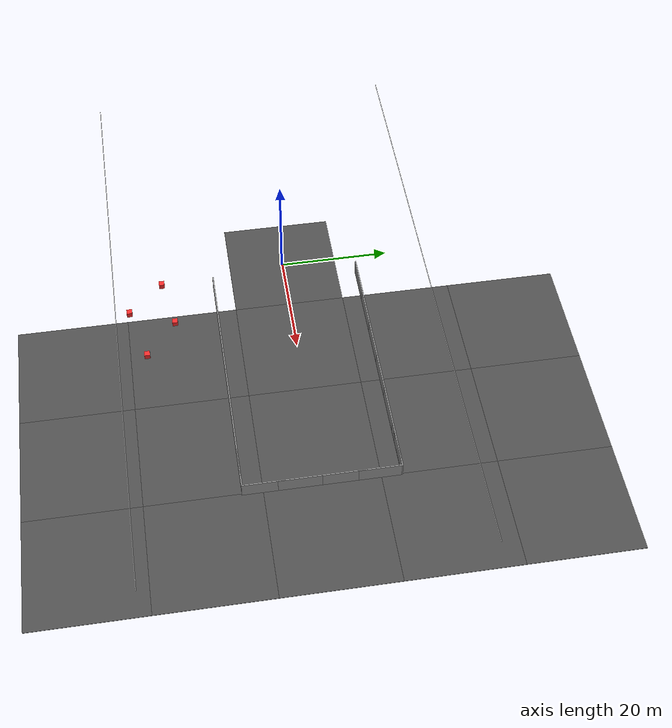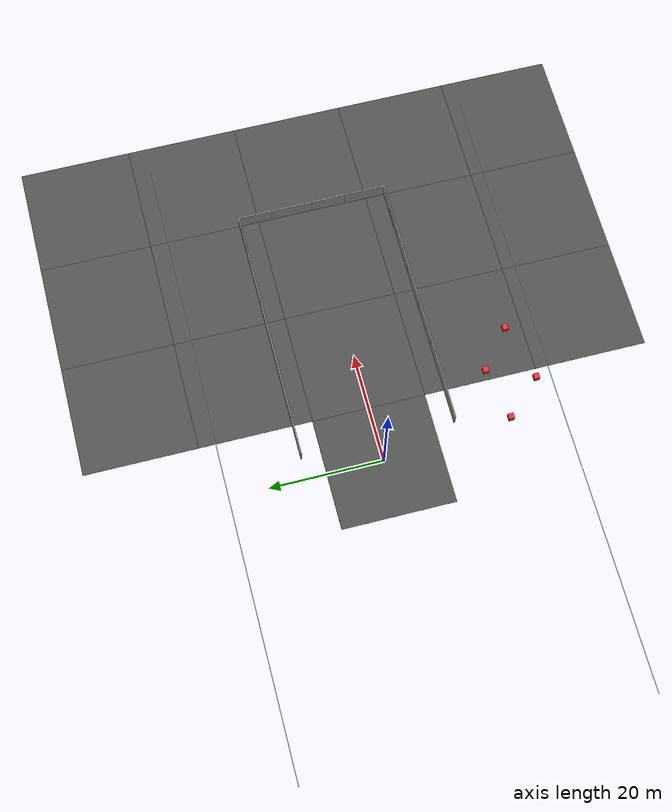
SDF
<sdf version="1.6">
 <world name="default">
  <model name="grey_wall_0">
   <static>1</static>
   <link name="link">
    <pose>0 0 1.4 0 -0 0</pose>
    <collision name="collision"><geometry><box><size>7.5 0.2 2.8</size></box></geometry></collision>
    <visual name="visual">
     <cast_shadows>0</cast_shadows>
     <geometry><box><size>7.5 0.2 2.8</size></box></geometry>
     <material>
      <script>
       <uri>model://grey_wall/materials/scripts</uri>
       <uri>model://grey_wall/materials/textures</uri>
       <name>vrc/grey_wall</name>
      </script>
     </material>
    </visual>
   </link>
   <pose>7.5 -13.5 0 0 -0 0</pose>
  </model>
  <model name="grey_wall_2">
   <static>1</static>
   <link name="link">
    <pose>0 0 1.4 0 -0 0</pose>
    <collision name="collision"><geometry><box><size>7.5 0.2 2.8</size></box></geometry></collision>
    <visual name="visual">
     <cast_shadows>0</cast_shadows>
     <geometry><box><size>7.5 0.2 2.8</size></box></geometry>
     <material>
      <script>
       <uri>model://grey_wall/materials/scripts</uri>
       <uri>model://grey_wall/materials/textures</uri>
       <name>vrc/grey_wall</name>
      </script>
     </material>
    </visual>
   </link>
   <pose>7.5 13.5 0 0 -0 0</pose>
  </model>
  <model name="grey_wall_5">
   <static>1</static>
   <link name="link">
    <pose>0 0 1.4 0 -0 0</pose>
    <collision name="collision"><geometry><box><size>7.5 0.2 2.8</size></box></geometry></collision>
    <visual name="visual">
     <cast_shadows>0</cast_shadows>
     <geometry><box><size>7.5 0.2 2.8</size></box></geometry>
     <material>
      <script>
       <uri>model://grey_wall/materials/scripts</uri>
       <uri>model://grey_wall/materials/textures</uri>
       <name>vrc/grey_wall</name>
      </script>
     </material>
    </visual>
   </link>
   <pose>30 -13.5 0 0 -0 0</pose>
  </model>
  <model name="grey_wall_6">
   <static>1</static>
   <link name="link">
    <pose>0 0 1.4 0 -0 0</pose>
    <collision name="collision"><geometry><box><size>7.5 0.2 2.8</size></box></geometry></collision>
    <visual name="visual">
     <cast_shadows>0</cast_shadows>
     <geometry><box><size>7.5 0.2 2.8</size></box></geometry>
     <material>
      <script>
       <uri>model://grey_wall/materials/scripts</uri>
       <uri>model://grey_wall/materials/textures</uri>
       <name>vrc/grey_wall</name>
      </script>
     </material>
    </visual>
   </link>
   <pose>15 -13.5 0 0 -0 0</pose>
  </model>
  <model name="grey_wall_7">
   <static>1</static>
   <link name="link">
    <pose>0 0 1.4 0 -0 0</pose>
    <collision name="collision"><geometry><box><size>7.5 0.2 2.8</size></box></geometry></collision>
    <visual name="visual">
     <cast_shadows>0</cast_shadows>
     <geometry><box><size>7.5 0.2 2.8</size></box></geometry>
     <material>
      <script>
       <uri>model://grey_wall/materials/scripts</uri>
       <uri>model://grey_wall/materials/textures</uri>
       <name>vrc/grey_wall</name>
      </script>
     </material>
    </visual>
   </link>
   <pose>22.5 -13.5 0 0 -0 0</pose>
  </model>
  <model name="grey_wall_11">
   <static>1</static>
   <link name="link">
    <pose>0 0 1.4 0 -0 0</pose>
    <collision name="collision"><geometry><box><size>7.5 0.2 2.8</size></box></geometry></collision>
    <visual name="visual">
     <cast_shadows>0</cast_shadows>
     <geometry><box><size>7.5 0.2 2.8</size></box></geometry>
     <material>
      <script>
       <uri>model://grey_wall/materials/scripts</uri>
       <uri>model://grey_wall/materials/textures</uri>
       <name>vrc/grey_wall</name>
      </script>
     </material>
    </visual>
   </link>
   <pose>15 13.5 0 0 -0 0</pose>
  </model>
  <model name="grey_wall_12">
   <static>1</static>
   <link name="link">
    <pose>0 0 1.4 0 -0 0</pose>
    <collision name="collision"><geometry><box><size>7.5 0.2 2.8</size></box></geometry></collision>
    <visual name="visual">
     <cast_shadows>0</cast_shadows>
     <geometry><box><size>7.5 0.2 2.8</size></box></geometry>
     <material>
      <script>
       <uri>model://grey_wall/materials/scripts</uri>
       <uri>model://grey_wall/materials/textures</uri>
       <name>vrc/grey_wall</name>
      </script>
     </material>
    </visual>
   </link>
   <pose>22.5 13.5 0 0 -0 0</pose>
  </model>
  <model name="grey_wall_13">
   <static>1</static>
   <link name="link">
    <pose>0 0 1.4 0 -0 0</pose>
    <collision name="collision"><geometry><box><size>7.5 0.2 2.8</size></box></geometry></collision>
    <visual name="visual">
     <cast_shadows>0</cast_shadows>
     <geometry><box><size>7.5 0.2 2.8</size></box></geometry>
     <material>
      <script>
       <uri>model://grey_wall/materials/scripts</uri>
       <uri>model://grey_wall/materials/textures</uri>
       <name>vrc/grey_wall</name>
      </script>
     </material>
    </visual>
   </link>
   <pose>30 13.5 0 0 -0 0</pose>
  </model>
  <model name="grey_wall_17">
   <static>1</static>
   <link name="link">
    <pose>0 0 1.4 0 -0 0</pose>
    <collision name="collision"><geometry><box><size>7.5 0.2 2.8</size></box></geometry></collision>
    <visual name="visual">
     <cast_shadows>0</cast_shadows>
     <geometry><box><size>7.5 0.2 2.8</size></box></geometry>
     <material>
      <script>
       <uri>model://grey_wall/materials/scripts</uri>
       <uri>model://grey_wall/materials/textures</uri>
       <name>vrc/grey_wall</name>
      </script>
     </material>
    </visual>
   </link>
   <pose>50.15 -9.85 0 0 -0 1.5708</pose>
  </model>
  <model name="grey_wall_18">
   <static>1</static>
   <link name="link">
    <pose>0 0 1.4 0 -0 0</pose>
    <collision name="collision"><geometry><box><size>7.5 0.2 2.8</size></box></geometry></collision>
    <visual name="visual">
     <cast_shadows>0</cast_shadows>
     <geometry><box><size>7.5 0.2 2.8</size></box></geometry>
     <material>
      <script>
       <uri>model://grey_wall/materials/scripts</uri>
       <uri>model://grey_wall/materials/textures</uri>
       <name>vrc/grey_wall</name>
      </script>
     </material>
    </visual>
   </link>
   <pose>50.15 9.85 0 0 -0 1.5708</pose>
  </model>
  <model name="grey_wall_19">
   <static>1</static>
   <link name="link">
    <pose>0 0 1.4 0 -0 0</pose>
    <collision name="collision"><geometry><box><size>7.5 0.2 2.8</size></box></geometry></collision>
    <visual name="visual">
     <cast_shadows>0</cast_shadows>
     <geometry><box><size>7.5 0.2 2.8</size></box></geometry>
     <material>
      <script>
       <uri>model://grey_wall/materials/scripts</uri>
       <uri>model://grey_wall/materials/textures</uri>
       <name>vrc/grey_wall</name>
      </script>
     </material>
    </visual>
   </link>
   <pose>50.15 -3.75 0 0 -0 1.5708</pose>
  </model>
  <model name="grey_wall_20">
   <static>1</static>
   <link name="link">
    <pose>0 0 1.4 0 -0 0</pose>
    <collision name="collision"><geometry><box><size>7.5 0.2 2.8</size></box></geometry></collision>
    <visual name="visual">
     <cast_shadows>0</cast_shadows>
     <geometry><box><size>7.5 0.2 2.8</size></box></geometry>
     <material>
      <script>
       <uri>model://grey_wall/materials/scripts</uri>
       <uri>model://grey_wall/materials/textures</uri>
       <name>vrc/grey_wall</name>
      </script>
     </material>
    </visual>
   </link>
   <pose>50.15 3.75 0 0 -0 1.5708</pose>
  </model>
  <model name="asphalt_plane">
   <static>1</static>
   <link name="link">
    <collision name="collision"><geometry><box><size>20 20 0.1</size></box></geometry></collision>
    <visual name="visual">
     <cast_shadows>0</cast_shadows>
     <geometry><box><size>20 20 0.1</size></box></geometry>
     <material>
      <script>
       <uri>model://asphalt_plane/materials/scripts</uri>
       <uri>model://asphalt_plane/materials/textures</uri>
       <name>vrc/asphalt</name>
      </script>
     </material>
    </visual>
   </link>
  </model>
  <model name="asphalt_plane_2">
   <static>1</static>
   <link name="link">
    <collision name="collision"><geometry><box><size>20 20 0.1</size></box></geometry></collision>
    <visual name="visual">
     <cast_shadows>0</cast_shadows>
     <geometry><box><size>20 20 0.1</size></box></geometry>
     <material>
      <script>
       <uri>model://asphalt_plane/materials/scripts</uri>
       <uri>model://asphalt_plane/materials/textures</uri>
       <name>vrc/asphalt</name>
      </script>
     </material>
    </visual>
   </link>
   <pose>20 0 0 0 -0 0</pose>
  </model>
  <model name="asphalt_plane_3">
   <static>1</static>
   <link name="link">
    <collision name="collision"><geometry><box><size>20 20 0.1</size></box></geometry></collision>
    <visual name="visual">
     <cast_shadows>0</cast_shadows>
     <geometry><box><size>20 20 0.1</size></box></geometry>
     <material>
      <script>
       <uri>model://asphalt_plane/materials/scripts</uri>
       <uri>model://asphalt_plane/materials/textures</uri>
       <name>vrc/asphalt</name>
      </script>
     </material>
    </visual>
   </link>
   <pose>40 0 0 0 -0 0</pose>
  </model>
  <model name="asphalt_plane_7">
   <static>1</static>
   <link name="link">
    <collision name="collision"><geometry><box><size>20 20 0.1</size></box></geometry></collision>
    <visual name="visual">
     <cast_shadows>0</cast_shadows>
     <geometry><box><size>20 20 0.1</size></box></geometry>
     <material>
      <script>
       <uri>model://asphalt_plane/materials/scripts</uri>
       <uri>model://asphalt_plane/materials/textures</uri>
       <name>vrc/asphalt</name>
      </script>
     </material>
    </visual>
   </link>
   <pose>20 -20 0 0 -0 0</pose>
  </model>
  <model name="asphalt_plane_8">
   <static>1</static>
   <link name="link">
    <collision name="collision"><geometry><box><size>20 20 0.1</size></box></geometry></collision>
    <visual name="visual">
     <cast_shadows>0</cast_shadows>
     <geometry><box><size>20 20 0.1</size></box></geometry>
     <material>
      <script>
       <uri>model://asphalt_plane/materials/scripts</uri>
       <uri>model://asphalt_plane/materials/textures</uri>
       <name>vrc/asphalt</name>
      </script>
     </material>
    </visual>
   </link>
   <pose>40 -20 0 0 -0 0</pose>
  </model>
  <model name="asphalt_plane_12">
   <static>1</static>
   <link name="link">
    <collision name="collision"><geometry><box><size>20 20 0.1</size></box></geometry></collision>
    <visual name="visual">
     <cast_shadows>0</cast_shadows>
     <geometry><box><size>20 20 0.1</size></box></geometry>
     <material>
      <script>
       <uri>model://asphalt_plane/materials/scripts</uri>
       <uri>model://asphalt_plane/materials/textures</uri>
       <name>vrc/asphalt</name>
      </script>
     </material>
    </visual>
   </link>
   <pose>20 20 0 0 -0 0</pose>
  </model>
  <model name="asphalt_plane_13">
   <static>1</static>
   <link name="link">
    <collision name="collision"><geometry><box><size>20 20 0.1</size></box></geometry></collision>
    <visual name="visual">
     <cast_shadows>0</cast_shadows>
     <geometry><box><size>20 20 0.1</size></box></geometry>
     <material>
      <script>
       <uri>model://asphalt_plane/materials/scripts</uri>
       <uri>model://asphalt_plane/materials/textures</uri>
       <name>vrc/asphalt</name>
      </script>
     </material>
    </visual>
   </link>
   <pose>40 20 0 0 -0 0</pose>
  </model>
  <model name="asphalt_plane_14">
   <static>1</static>
   <link name="link">
    <collision name="collision"><geometry><box><size>20 20 0.1</size></box></geometry></collision>
    <visual name="visual">
     <cast_shadows>0</cast_shadows>
     <geometry><box><size>20 20 0.1</size></box></geometry>
     <material>
      <script>
       <uri>model://asphalt_plane/materials/scripts</uri>
       <uri>model://asphalt_plane/materials/textures</uri>
       <name>vrc/asphalt</name>
      </script>
     </material>
    </visual>
   </link>
   <pose>60 0 0 0 -0 0</pose>
  </model>
  <model name="asphalt_plane_15">
   <static>1</static>
   <link name="link">
    <collision name="collision"><geometry><box><size>20 20 0.1</size></box></geometry></collision>
    <visual name="visual">
     <cast_shadows>0</cast_shadows>
     <geometry><box><size>20 20 0.1</size></box></geometry>
     <material>
      <script>
       <uri>model://asphalt_plane/materials/scripts</uri>
       <uri>model://asphalt_plane/materials/textures</uri>
       <name>vrc/asphalt</name>
      </script>
     </material>
    </visual>
   </link>
   <pose>60 20 0 0 -0 0</pose>
  </model>
  <model name="asphalt_plane_16">
   <static>1</static>
   <link name="link">
    <collision name="collision"><geometry><box><size>20 20 0.1</size></box></geometry></collision>
    <visual name="visual">
     <cast_shadows>0</cast_shadows>
     <geometry><box><size>20 20 0.1</size></box></geometry>
     <material>
      <script>
       <uri>model://asphalt_plane/materials/scripts</uri>
       <uri>model://asphalt_plane/materials/textures</uri>
       <name>vrc/asphalt</name>
      </script>
     </material>
    </visual>
   </link>
   <pose>60 -20 0 0 -0 0</pose>
  </model>
  <model name="asphalt_plane_17">
   <static>1</static>
   <link name="link">
    <collision name="collision"><geometry><box><size>20 20 0.1</size></box></geometry></collision>
    <visual name="visual">
     <cast_shadows>0</cast_shadows>
     <geometry><box><size>20 20 0.1</size></box></geometry>
     <material>
      <script>
       <uri>model://asphalt_plane/materials/scripts</uri>
       <uri>model://asphalt_plane/materials/textures</uri>
       <name>vrc/asphalt</name>
      </script>
     </material>
    </visual>
   </link>
   <pose>40 -40 0 0 -0 0</pose>
  </model>
  <model name="asphalt_plane_18">
   <static>1</static>
   <link name="link">
    <collision name="collision"><geometry><box><size>20 20 0.1</size></box></geometry></collision>
    <visual name="visual">
     <cast_shadows>0</cast_shadows>
     <geometry><box><size>20 20 0.1</size></box></geometry>
     <material>
      <script>
       <uri>model://asphalt_plane/materials/scripts</uri>
       <uri>model://asphalt_plane/materials/textures</uri>
       <name>vrc/asphalt</name>
      </script>
     </material>
    </visual>
   </link>
   <pose>60 -40 0 0 -0 0</pose>
  </model>
  <model name="asphalt_plane_19">
   <static>1</static>
   <link name="link">
    <collision name="collision"><geometry><box><size>20 20 0.1</size></box></geometry></collision>
    <visual name="visual">
     <cast_shadows>0</cast_shadows>
     <geometry><box><size>20 20 0.1</size></box></geometry>
     <material>
      <script>
       <uri>model://asphalt_plane/materials/scripts</uri>
       <uri>model://asphalt_plane/materials/textures</uri>
       <name>vrc/asphalt</name>
      </script>
     </material>
    </visual>
   </link>
   <pose>20 -40 0 0 -0 0</pose>
  </model>
  <model name="asphalt_plane_31">
   <static>1</static>
   <link name="link">
    <collision name="collision"><geometry><box><size>20 20 0.1</size></box></geometry></collision>
    <visual name="visual">
     <cast_shadows>0</cast_shadows>
     <geometry><box><size>20 20 0.1</size></box></geometry>
     <material>
      <script>
       <uri>model://asphalt_plane/materials/scripts</uri>
       <uri>model://asphalt_plane/materials/textures</uri>
       <name>vrc/asphalt</name>
      </script>
     </material>
    </visual>
   </link>
   <pose>20 40 0 0 -0 0</pose>
  </model>
  <model name="asphalt_plane_32">
   <static>1</static>
   <link name="link">
    <collision name="collision"><geometry><box><size>20 20 0.1</size></box></geometry></collision>
    <visual name="visual">
     <cast_shadows>0</cast_shadows>
     <geometry><box><size>20 20 0.1</size></box></geometry>
     <material>
      <script>
       <uri>model://asphalt_plane/materials/scripts</uri>
       <uri>model://asphalt_plane/materials/textures</uri>
       <name>vrc/asphalt</name>
      </script>
     </material>
    </visual>
   </link>
   <pose>40 40 0 0 -0 0</pose>
  </model>
  <model name="asphalt_plane_33">
   <static>1</static>
   <link name="link">
    <collision name="collision"><geometry><box><size>20 20 0.1</size></box></geometry></collision>
    <visual name="visual">
     <cast_shadows>0</cast_shadows>
     <geometry><box><size>20 20 0.1</size></box></geometry>
     <material>
      <script>
       <uri>model://asphalt_plane/materials/scripts</uri>
       <uri>model://asphalt_plane/materials/textures</uri>
       <name>vrc/asphalt</name>
      </script>
     </material>
    </visual>
   </link>
   <pose>60 40 0 0 -0 0</pose>
  </model>
  <model name="54m_redline">
   <static>1</static>
   <link name="link">
    <collision name="collision">
     <geometry><plane><normal>0 0 1</normal><size>59.3 0.1</size></plane></geometry>
     <surface><friction><ode><mu>100</mu><mu2>50</mu2></ode></friction></surface>
    </collision>
    <visual name="visual">
     <cast_shadows>0</cast_shadows>
     <geometry><plane><normal>0 0 1</normal><size>59.3 0.1</size></plane></geometry>
     <material>
      <script>
       <uri>model://54m_redline/materials/scripts</uri>
       <uri>model://54m_redline/materials/textures/</uri>
       <name>MyGroundPlane/Image</name>
      </script>
     </material>
    </visual>
   </link>
   <pose>65.3 -2.6 0.06 0 -0 1.5707</pose>
  </model>
  <model name="grey_wall_25">
   <static>1</static>
   <link name="link">
    <pose>0 0 1.4 0 -0 0</pose>
    <collision name="collision"><geometry><box><size>7.5 0.2 2.8</size></box></geometry></collision>
    <visual name="visual">
     <cast_shadows>0</cast_shadows>
     <geometry><box><size>7.5 0.2 2.8</size></box></geometry>
     <material>
      <script>
       <uri>model://grey_wall/materials/scripts</uri>
       <uri>model://grey_wall/materials/textures</uri>
       <name>vrc/grey_wall</name>
      </script>
     </material>
    </visual>
   </link>
   <pose>37.5 -13.5 0 0 -0 0</pose>
  </model>
  <model name="grey_wall_26">
   <static>1</static>
   <link name="link">
    <pose>0 0 1.4 0 -0 0</pose>
    <collision name="collision"><geometry><box><size>7.5 0.2 2.8</size></box></geometry></collision>
    <visual name="visual">
     <cast_shadows>0</cast_shadows>
     <geometry><box><size>7.5 0.2 2.8</size></box></geometry>
     <material>
      <script>
       <uri>model://grey_wall/materials/scripts</uri>
       <uri>model://grey_wall/materials/textures</uri>
       <name>vrc/grey_wall</name>
      </script>
     </material>
    </visual>
   </link>
   <pose>45 -13.5 0 0 -0 0</pose>
  </model>
  <model name="grey_wall_27">
   <static>1</static>
   <link name="link">
    <pose>0 0 1.4 0 -0 0</pose>
    <collision name="collision"><geometry><box><size>7.5 0.2 2.8</size></box></geometry></collision>
    <visual name="visual">
     <cast_shadows>0</cast_shadows>
     <geometry><box><size>7.5 0.2 2.8</size></box></geometry>
     <material>
      <script>
       <uri>model://grey_wall/materials/scripts</uri>
       <uri>model://grey_wall/materials/textures</uri>
       <name>vrc/grey_wall</name>
      </script>
     </material>
    </visual>
   </link>
   <pose>46.5 -13.5 0 0 -0 0</pose>
  </model>
  <model name="grey_wall_28">
   <static>1</static>
   <link name="link">
    <pose>0 0 1.4 0 -0 0</pose>
    <collision name="collision"><geometry><box><size>7.5 0.2 2.8</size></box></geometry></collision>
    <visual name="visual">
     <cast_shadows>0</cast_shadows>
     <geometry><box><size>7.5 0.2 2.8</size></box></geometry>
     <material>
      <script>
       <uri>model://grey_wall/materials/scripts</uri>
       <uri>model://grey_wall/materials/textures</uri>
       <name>vrc/grey_wall</name>
      </script>
     </material>
    </visual>
   </link>
   <pose>37.5 13.5 0 0 -0 0</pose>
  </model>
  <model name="grey_wall_29">
   <static>1</static>
   <link name="link">
    <pose>0 0 1.4 0 -0 0</pose>
    <collision name="collision"><geometry><box><size>7.5 0.2 2.8</size></box></geometry></collision>
    <visual name="visual">
     <cast_shadows>0</cast_shadows>
     <geometry><box><size>7.5 0.2 2.8</size></box></geometry>
     <material>
      <script>
       <uri>model://grey_wall/materials/scripts</uri>
       <uri>model://grey_wall/materials/textures</uri>
       <name>vrc/grey_wall</name>
      </script>
     </material>
    </visual>
   </link>
   <pose>45 13.5 0 0 -0 0</pose>
  </model>
  <model name="grey_wall_30">
   <static>1</static>
   <link name="link">
    <pose>0 0 1.4 0 -0 0</pose>
    <collision name="collision"><geometry><box><size>7.5 0.2 2.8</size></box></geometry></collision>
    <visual name="visual">
     <cast_shadows>0</cast_shadows>
     <geometry><box><size>7.5 0.2 2.8</size></box></geometry>
     <material>
      <script>
       <uri>model://grey_wall/materials/scripts</uri>
       <uri>model://grey_wall/materials/textures</uri>
       <name>vrc/grey_wall</name>
      </script>
     </material>
    </visual>
   </link>
   <pose>46.5 13.5 0 0 -0 0</pose>
  </model>
  <model name="92m_redline">
   <static>1</static>
   <link name="link">
    <collision name="collision">
     <geometry><plane><normal>0 0 1</normal><size>114.3 0.1</size></plane></geometry>
     <surface><friction><ode><mu>100</mu><mu2>50</mu2></ode></friction></surface>
    </collision>
    <visual name="visual">
     <cast_shadows>0</cast_shadows>
     <geometry><plane><normal>0 0 1</normal><size>114.3 0.1</size></plane></geometry>
     <material>
      <script>
       <uri>model://92m_redline/materials/scripts</uri>
       <uri>model://92m_redline/materials/textures/</uri>
       <name>MyGroundPlane/Image</name>
      </script>
     </material>
    </visual>
   </link>
   <pose>8.2 27 0.06 0 -0 0</pose>
  </model>
  <model name="92m_redline_0">
   <static>1</static>
   <link name="link">
    <collision name="collision">
     <geometry><plane><normal>0 0 1</normal><size>114.3 0.1</size></plane></geometry>
     <surface><friction><ode><mu>100</mu><mu2>50</mu2></ode></friction></surface>
    </collision>
    <visual name="visual">
     <cast_shadows>0</cast_shadows>
     <geometry><plane><normal>0 0 1</normal><size>114.3 0.1</size></plane></geometry>
     <material>
      <script>
       <uri>model://92m_redline/materials/scripts</uri>
       <uri>model://92m_redline/materials/textures/</uri>
       <name>MyGroundPlane/Image</name>
      </script>
     </material>
    </visual>
   </link>
   <pose>8.2 -32.2 0.06 0 -0 0</pose>
  </model>
  <model name="unit_box_0_clone_clone_1">
   <link name="link">
    <inertial>
     <mass>1</mass>
     <inertia>
      <ixx>0.166667</ixx>
      <ixy>0</ixy>
      <ixz>0</ixz>
      <iyy>0.166667</iyy>
      <iyz>0</iyz>
      <izz>0.166667</izz>
     </inertia>
    </inertial>
    <visual name="visual">
     <geometry><box><size>1 1 1</size></box></geometry>
     <material>
      <script><name>Gazebo/Grey</name><uri>file://media/materials/scripts/gazebo.material</uri></script>
      <shader type="pixel"><normal_map>__default__</normal_map></shader>
      <ambient>0.937 0.161 0.161 1</ambient>
      <diffuse>0.937 0.161 0.161 1</diffuse>
      <specular>0.937 0.161 0.161 1</specular>
      <emissive>0.937 0.161 0.161 1</emissive>
     </material>
    </visual>
    <collision name="collision">
     <geometry><box><size>1 1 1</size></box></geometry>
     <surface>
      <friction>
       <ode><mu>1</mu><mu2>1</mu2><fdir1>0 0 0</fdir1><slip1>0</slip1><slip2>0</slip2></ode>
       <torsional>
        <coefficient>1</coefficient>
        <patch_radius>0</patch_radius>
        <surface_radius>0</surface_radius>
        <use_patch_radius>1</use_patch_radius>
        <ode><slip>0</slip></ode>
       </torsional>
      </friction>
      <bounce><restitution_coefficient>0</restitution_coefficient><threshold>1e+06</threshold></bounce>
      <contact>
       <collide_without_contact>0</collide_without_contact>
       <collide_without_contact_bitmask>1</collide_without_contact_bitmask>
       <collide_bitmask>1</collide_bitmask>
       <ode>
        <soft_cfm>0</soft_cfm>
        <soft_erp>0.2</soft_erp>
        <kp>1e+13</kp>
        <kd>1</kd>
        <max_vel>0.01</max_vel>
        <min_depth>0</min_depth>
       </ode>
       <bullet>
        <split_impulse>1</split_impulse>
        <split_impulse_penetration_threshold>-0.01</split_impulse_penetration_threshold>
        <soft_cfm>0</soft_cfm>
        <soft_erp>0.2</soft_erp>
        <kp>1e+13</kp>
        <kd>1</kd>
       </bullet>
      </contact>
     </surface>
    </collision>
   </link>
   <static>0</static>
   <pose>11.674 -21.4085 0.5 0 -0 0</pose>
  </model>
  <model name="unit_box_0_clone_clone_2">
   <link name="link">
    <inertial>
     <mass>1</mass>
     <inertia>
      <ixx>0.166667</ixx>
      <ixy>0</ixy>
      <ixz>0</ixz>
      <iyy>0.166667</iyy>
      <iyz>0</iyz>
      <izz>0.166667</izz>
     </inertia>
    </inertial>
    <visual name="visual">
     <geometry><box><size>1 1 1</size></box></geometry>
     <material>
      <script><name>Gazebo/Grey</name><uri>file://media/materials/scripts/gazebo.material</uri></script>
      <shader type="pixel"><normal_map>__default__</normal_map></shader>
      <ambient>0.937 0.161 0.161 1</ambient>
      <diffuse>0.937 0.161 0.161 1</diffuse>
      <specular>0.937 0.161 0.161 1</specular>
      <emissive>0.937 0.161 0.161 1</emissive>
     </material>
    </visual>
    <collision name="collision">
     <geometry><box><size>1 1 1</size></box></geometry>
     <surface>
      <friction>
       <ode><mu>1</mu><mu2>1</mu2><fdir1>0 0 0</fdir1><slip1>0</slip1><slip2>0</slip2></ode>
       <torsional>
        <coefficient>1</coefficient>
        <patch_radius>0</patch_radius>
        <surface_radius>0</surface_radius>
        <use_patch_radius>1</use_patch_radius>
        <ode><slip>0</slip></ode>
       </torsional>
      </friction>
      <bounce><restitution_coefficient>0</restitution_coefficient><threshold>1e+06</threshold></bounce>
      <contact>
       <collide_without_contact>0</collide_without_contact>
       <collide_without_contact_bitmask>1</collide_without_contact_bitmask>
       <collide_bitmask>1</collide_bitmask>
       <ode>
        <soft_cfm>0</soft_cfm>
        <soft_erp>0.2</soft_erp>
        <kp>1e+13</kp>
        <kd>1</kd>
        <max_vel>0.01</max_vel>
        <min_depth>0</min_depth>
       </ode>
       <bullet>
        <split_impulse>1</split_impulse>
        <split_impulse_penetration_threshold>-0.01</split_impulse_penetration_threshold>
        <soft_cfm>0</soft_cfm>
        <soft_erp>0.2</soft_erp>
        <kp>1e+13</kp>
        <kd>1</kd>
       </bullet>
      </contact>
     </surface>
    </collision>
   </link>
   <static>0</static>
   <pose>8.27975 -29.5485 0.5 0 -0 0</pose>
  </model>
  <model name="unit_box_0_clone_clone_3">
   <link name="link">
    <inertial>
     <mass>1</mass>
     <inertia>
      <ixx>0.166667</ixx>
      <ixy>0</ixy>
      <ixz>0</ixz>
      <iyy>0.166667</iyy>
      <iyz>0</iyz>
      <izz>0.166667</izz>
     </inertia>
    </inertial>
    <visual name="visual">
     <geometry><box><size>1 1 1</size></box></geometry>
     <material>
      <script><name>Gazebo/Grey</name><uri>file://media/materials/scripts/gazebo.material</uri></script>
      <shader type="pixel"><normal_map>__default__</normal_map></shader>
      <ambient>0.937 0.161 0.161 1</ambient>
      <diffuse>0.937 0.161 0.161 1</diffuse>
      <specular>0.937 0.161 0.161 1</specular>
      <emissive>0.937 0.161 0.161 1</emissive>
     </material>
    </visual>
    <collision name="collision">
     <geometry><box><size>1 1 1</size></box></geometry>
     <surface>
      <friction>
       <ode><mu>1</mu><mu2>1</mu2><fdir1>0 0 0</fdir1><slip1>0</slip1><slip2>0</slip2></ode>
       <torsional>
        <coefficient>1</coefficient>
        <patch_radius>0</patch_radius>
        <surface_radius>0</surface_radius>
        <use_patch_radius>1</use_patch_radius>
        <ode><slip>0</slip></ode>
       </torsional>
      </friction>
      <bounce><restitution_coefficient>0</restitution_coefficient><threshold>1e+06</threshold></bounce>
      <contact>
       <collide_without_contact>0</collide_without_contact>
       <collide_without_contact_bitmask>1</collide_without_contact_bitmask>
       <collide_bitmask>1</collide_bitmask>
       <ode>
        <soft_cfm>0</soft_cfm>
        <soft_erp>0.2</soft_erp>
        <kp>1e+13</kp>
        <kd>1</kd>
        <max_vel>0.01</max_vel>
        <min_depth>0</min_depth>
       </ode>
       <bullet>
        <split_impulse>1</split_impulse>
        <split_impulse_penetration_threshold>-0.01</split_impulse_penetration_threshold>
        <soft_cfm>0</soft_cfm>
        <soft_erp>0.2</soft_erp>
        <kp>1e+13</kp>
        <kd>1</kd>
       </bullet>
      </contact>
     </surface>
    </collision>
   </link>
   <static>0</static>
   <pose>18.5688 -27.0083 0.5 0 -0 0</pose>
  </model>
  <model name="unit_box_0_clone_clone_4">
   <link name="link">
    <inertial>
     <mass>1</mass>
     <inertia>
      <ixx>0.166667</ixx>
      <ixy>0</ixy>
      <ixz>0</ixz>
      <iyy>0.166667</iyy>
      <iyz>0</iyz>
      <izz>0.166667</izz>
     </inertia>
    </inertial>
    <visual name="visual">
     <geometry><box><size>1 1 1</size></box></geometry>
     <material>
      <script><name>Gazebo/Grey</name><uri>file://media/materials/scripts/gazebo.material</uri></script>
      <shader type="pixel"><normal_map>__default__</normal_map></shader>
      <ambient>0.937 0.161 0.161 1</ambient>
      <diffuse>0.937 0.161 0.161 1</diffuse>
      <specular>0.937 0.161 0.161 1</specular>
      <emissive>0.937 0.161 0.161 1</emissive>
     </material>
    </visual>
    <collision name="collision">
     <geometry><box><size>1 1 1</size></box></geometry>
     <surface>
      <friction>
       <ode><mu>1</mu><mu2>1</mu2><fdir1>0 0 0</fdir1><slip1>0</slip1><slip2>0</slip2></ode>
       <torsional>
        <coefficient>1</coefficient>
        <patch_radius>0</patch_radius>
        <surface_radius>0</surface_radius>
        <use_patch_radius>1</use_patch_radius>
        <ode><slip>0</slip></ode>
       </torsional>
      </friction>
      <bounce><restitution_coefficient>0</restitution_coefficient><threshold>1e+06</threshold></bounce>
      <contact>
       <collide_without_contact>0</collide_without_contact>
       <collide_without_contact_bitmask>1</collide_without_contact_bitmask>
       <collide_bitmask>1</collide_bitmask>
       <ode>
        <soft_cfm>0</soft_cfm>
        <soft_erp>0.2</soft_erp>
        <kp>1e+13</kp>
        <kd>1</kd>
        <max_vel>0.01</max_vel>
        <min_depth>0</min_depth>
       </ode>
       <bullet>
        <split_impulse>1</split_impulse>
        <split_impulse_penetration_threshold>-0.01</split_impulse_penetration_threshold>
        <soft_cfm>0</soft_cfm>
        <soft_erp>0.2</soft_erp>
        <kp>1e+13</kp>
        <kd>1</kd>
       </bullet>
      </contact>
     </surface>
    </collision>
   </link>
   <static>0</static>
   <pose>2.1985 -23.1238 0.5 0 -0 0</pose>
  </model>
 </world>
</sdf>
